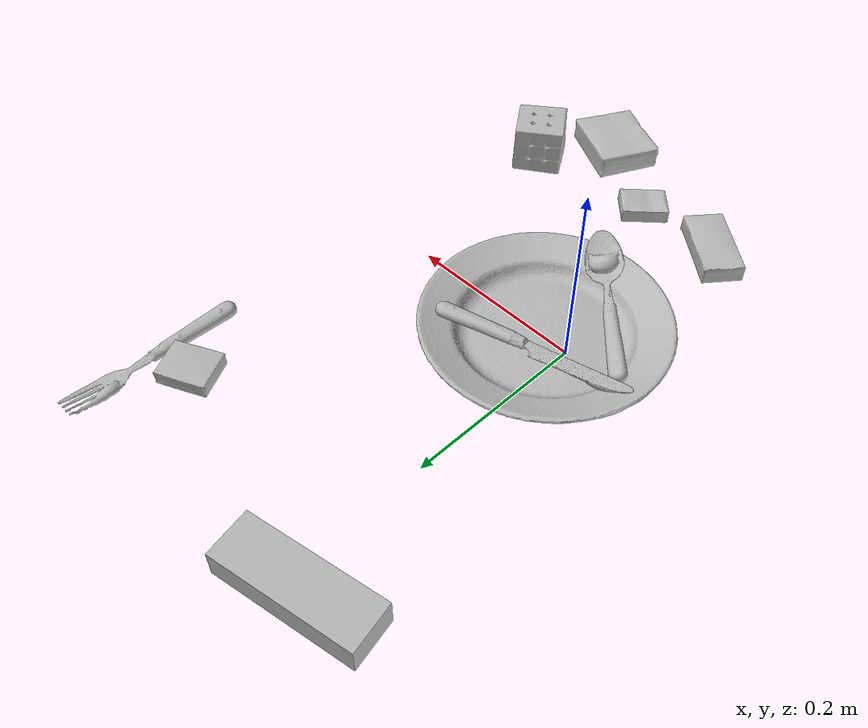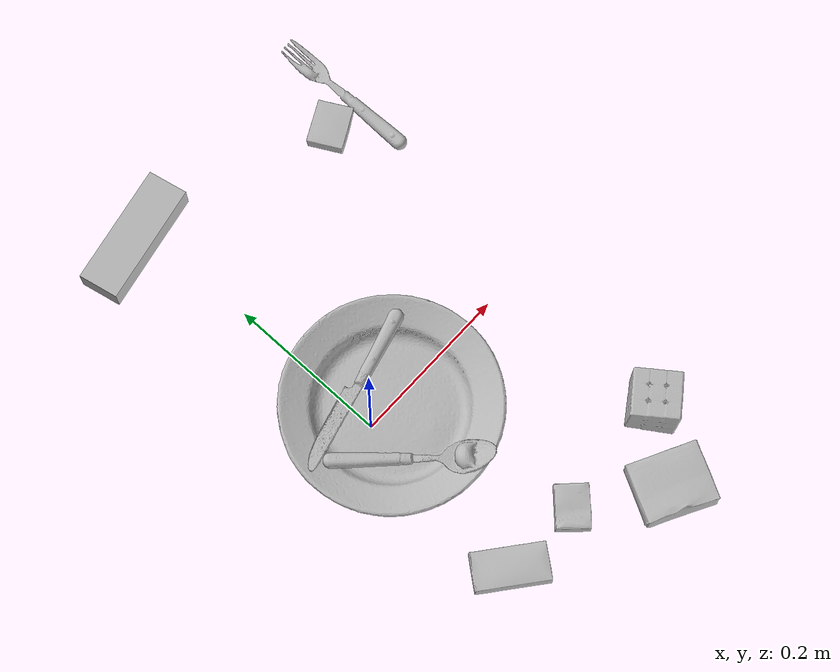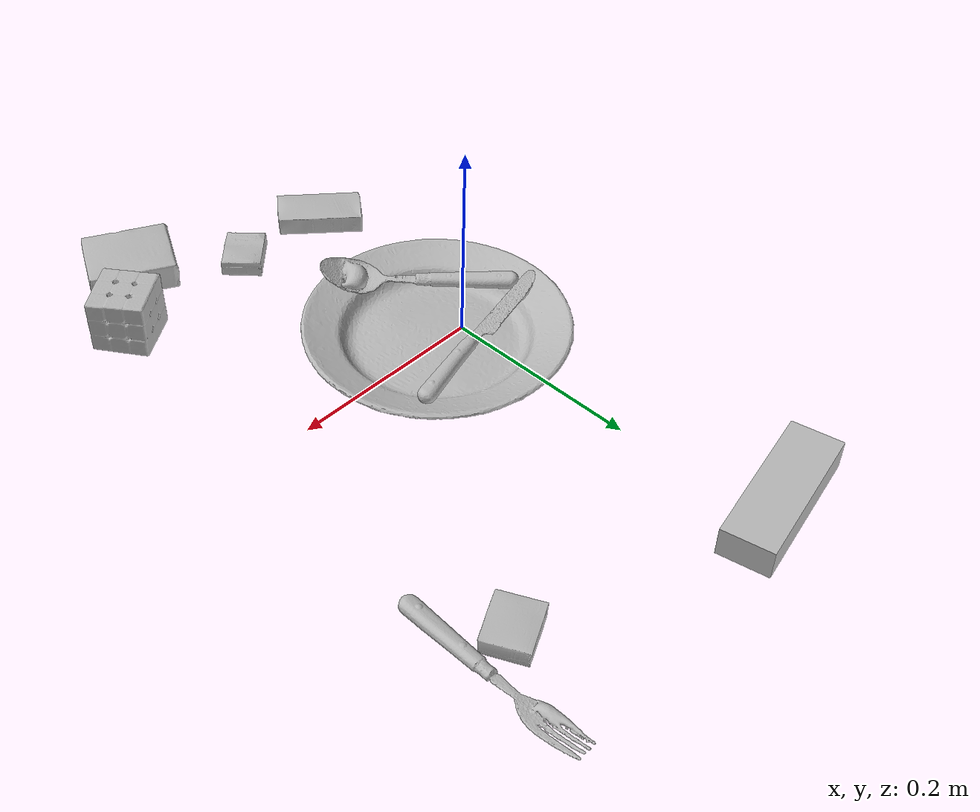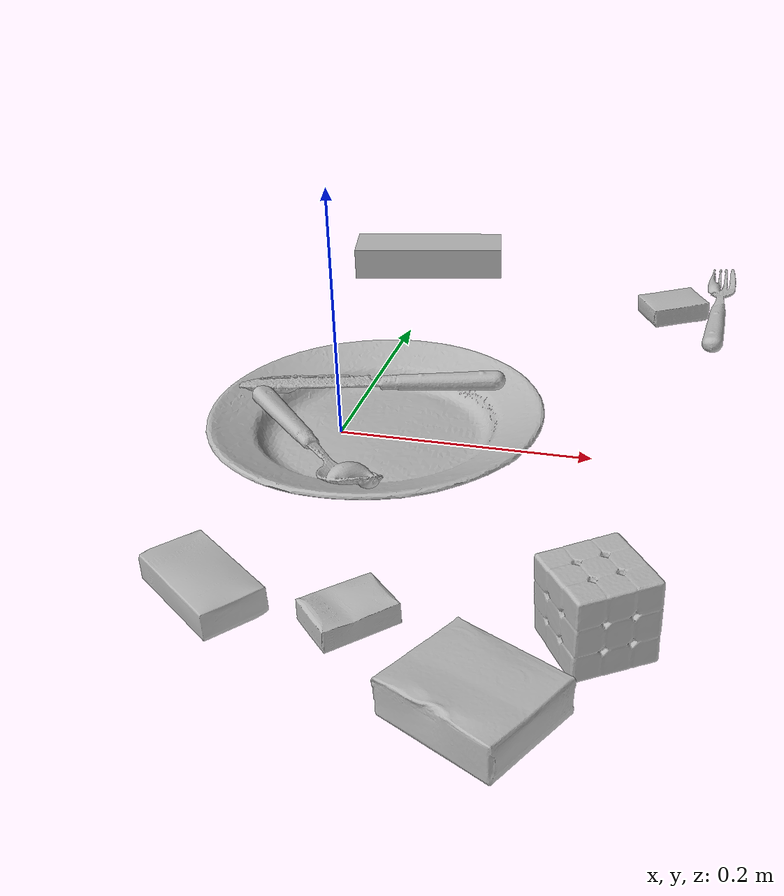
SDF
<sdf version="1.4">
  <world name="default">
    <light name="light1" type="point">
      <pose>0 0 1 0 0 0</pose>
      <diffuse>3 3 3 1</diffuse>
      <specular>3 3 3 1</specular>
    </light>
    <light name="light2" type="point">
      <pose>0 0.5 2 0 0 0</pose>
      <diffuse>1 1 1 1</diffuse>
      <specular>1 1 1 1</specular>
    </light>
    <light name="light3" type="point">
      <pose>0 0.5 2 0 0 0</pose>
      <diffuse>3 3 3 1</diffuse>
      <specular>3 3 3 1</specular>
    </light>
    <scene>
      <ambient>0.7 0.7 0.7</ambient>
    </scene>
    <model name="box11">
      <link name="link_box11">
        <collision name="default">
          <geometry>
            <mesh>
              <uri>model://pudding_box/collision_meshes/collision.obj</uri>
              <scale>0.5 0.5 0.5</scale>
            </mesh>
          </geometry>
          <surface>
            <friction>
              <ode>
                <mu>0.5</mu>
                <mu2>0.5</mu2>
              </ode>
            </friction>
          <contact>
        <ode>
            <max_vel>0</max_vel>
            <min_depth>0.0001</min_depth>
            <kp>1e8</kp>
        </ode>
    </contact></surface>
        </collision>
        <visual name="default">
          <geometry>
            <mesh>
              <uri>model://pudding_box/visual_meshes/visual.dae</uri>
              <scale>0.5 0.5 0.5</scale>
            </mesh>
          </geometry>
        </visual>
        <inertial>
          <mass>0.03786866366863251</mass>
          <pose>0.00024474109522998333 0.00040339428232982755 -0.0002594413817860186 0.005213102272185547 -0.006603797326323335 0.020079825161634604</pose>
          <inertia>
            <ixx>1.0702144e-05</ixx>
            <iyy>7.2004777e-06</iyy>
            <izz>1.580451e-05</izz>
            <ixy>0</ixy>
            <ixz>0</ixz>
            <iyz>0</iyz>
          </inertia>
        </inertial>
      </link>
      <pose>0.23676429688930511 0.285403847694397 0.00986288022249937 0.022355294671727165 -0.011389130168510661 -1.0885462207316083</pose>
    </model>
    <model name="box12">
      <link name="link_box12">
        <collision name="default">
          <geometry>
            <mesh>
              <uri>model://gelatin_box/collision_meshes/collision.obj</uri>
              <scale>1.0 1.0 1.0</scale>
            </mesh>
          </geometry>
          <surface>
            <friction>
              <ode>
                <mu>0.5</mu>
                <mu2>0.5</mu2>
              </ode>
            </friction>
          <contact>
        <ode>
            <max_vel>0</max_vel>
            <min_depth>0.0001</min_depth>
            <kp>1e8</kp>
        </ode>
    </contact></surface>
        </collision>
        <visual name="default">
          <geometry>
            <mesh>
              <uri>model://gelatin_box/visual_meshes/visual.dae</uri>
              <scale>1.0 1.0 1.0</scale>
            </mesh>
          </geometry>
        </visual>
        <inertial>
          <mass>0.12588495016098022</mass>
          <pose>0.0004319618456065655 0.00011156871914863586 -0.0003640321083366871 -0.0010503723379331838 -0.004755819617810625 0.016440561335826234</pose>
          <inertia>
            <ixx>8.886451e-05</ixx>
            <iyy>6.3475454e-05</iyy>
            <izz>0.00013527159</izz>
            <ixy>0</ixy>
            <ixz>0</ixz>
            <iyz>0</iyz>
          </inertia>
        </inertial>
      </link>
      <pose>0.17652112245559692 -0.2960408627986908 0.015168318524956703 0.005597365618804342 -0.0073044375009786635 -2.06486591633028</pose>
    </model>
    <model name="box13">
      <link name="link_box13">
        <collision name="default">
          <geometry>
            <mesh>
              <uri>model://rubiks_cube/collision_meshes/collision.obj</uri>
              <scale>1.0 1.0 1.0</scale>
            </mesh>
          </geometry>
          <surface>
            <friction>
              <ode>
                <mu>0.5</mu>
                <mu2>0.5</mu2>
              </ode>
            </friction>
          <contact>
        <ode>
            <max_vel>0</max_vel>
            <min_depth>0.0001</min_depth>
            <kp>1e8</kp>
        </ode>
    </contact></surface>
        </collision>
        <visual name="default">
          <geometry>
            <mesh>
              <uri>model://rubiks_cube/visual_meshes/visual.dae</uri>
              <scale>1.0 1.0 1.0</scale>
            </mesh>
          </geometry>
        </visual>
        <inertial>
          <mass>0.24923686683177948</mass>
          <pose>2.6721039830590598e-05 5.256966323941015e-05 -7.264316082000732e-06 -0.05467307197132049 -0.09814178001312306 -0.03445579173896148</pose>
          <inertia>
            <ixx>0.00013772011</ixx>
            <iyy>0.00013707785</iyy>
            <izz>0.00013886133</izz>
            <ixy>0</ixy>
            <ixz>0</ixz>
            <iyz>0</iyz>
          </inertia>
        </inertial>
      </link>
      <pose>0.23429033160209656 -0.2201094627380371 0.02867894247174263 -4.645930817720695e-06 -1.976604997101366e-06 2.1953077770867426</pose>
    </model>
    <model name="box21">
      <link name="link_box21">
        <collision name="default">
          <geometry>
            <mesh>
              <uri>model://cracker_box/collision_meshes/collision.obj</uri>
              <scale>0.25 0.25 0.25</scale>
            </mesh>
          </geometry>
          <surface>
            <friction>
              <ode>
                <mu>0.5</mu>
                <mu2>0.5</mu2>
              </ode>
            </friction>
          <contact>
        <ode>
            <max_vel>0</max_vel>
            <min_depth>0.0001</min_depth>
            <kp>1e8</kp>
        </ode>
    </contact></surface>
        </collision>
        <visual name="default">
          <geometry>
            <mesh>
              <uri>model://cracker_box/visual_meshes/visual.dae</uri>
              <scale>0.25 0.25 0.25</scale>
            </mesh>
          </geometry>
        </visual>
        <inertial>
          <mass>0.030397580936551094</mass>
          <pose>0.00023660376609768718 6.358562677633017e-05 -0.0004257384280208498 -0.0003162076301819785 -0.011106490531717715 0.002546795235004545</pose>
          <inertia>
            <ixx>4.8323677e-06</ixx>
            <iyy>7.979188e-06</iyy>
            <izz>1.1387034e-05</izz>
            <ixy>0</ixy>
            <ixz>0</ixz>
            <iyz>0</iyz>
          </inertia>
        </inertial>
      </link>
      <pose>0.08250757306814194 -0.23093357682228088 0.009120451286435127 -0.011788011250466954 -0.007367203232197314 0.7679475411000208</pose>
    </model>
    <model name="box22">
      <link name="link_box22">
        <collision name="default">
          <geometry>
            <mesh>
              <uri>model://jenga/collision_meshes/collision.obj</uri>
              <scale>1.0 1.0 1.0</scale>
            </mesh>
          </geometry>
          <surface>
            <friction>
              <ode>
                <mu>0.5</mu>
                <mu2>0.5</mu2>
              </ode>
            </friction>
          <contact>
        <ode>
            <max_vel>0</max_vel>
            <min_depth>0.0001</min_depth>
            <kp>1e8</kp>
        </ode>
    </contact></surface>
        </collision>
        <visual name="default">
          <geometry>
            <mesh>
              <uri>model://jenga/visual_meshes/visual.dae</uri>
              <scale>1.0 1.0 1.0</scale>
            </mesh>
          </geometry>
        </visual>
        <inertial>
          <mass>0.22754427790641785</mass>
          <pose>-2.502855807051674e-07 -0.00010250010382151231 -4.0923401684267446e-05 0.0 -7.34215461761844e-07 0.0</pose>
          <inertia>
            <ixx>6.2967025e-05</ixx>
            <iyy>0.00042666285</iyy>
            <izz>0.00045549884</izz>
            <ixy>0</ixy>
            <ixz>0</ixz>
            <iyz>0</iyz>
          </inertia>
        </inertial>
      </link>
      <pose>-0.02264496125280857 0.355744332075119 0.014999999664723873 1.1583775412248996e-08 3.8185173574760155e-09 -2.93172675568665</pose>
    </model>
    <model name="box23">
      <link name="link_box23">
        <collision name="default">
          <geometry>
            <mesh>
              <uri>model://sugar_box/collision_meshes/collision.obj</uri>
              <scale>0.5 0.5 0.5</scale>
            </mesh>
          </geometry>
          <surface>
            <friction>
              <ode>
                <mu>0.5</mu>
                <mu2>0.5</mu2>
              </ode>
            </friction>
          <contact>
        <ode>
            <max_vel>0</max_vel>
            <min_depth>0.0001</min_depth>
            <kp>1e8</kp>
        </ode>
    </contact></surface>
        </collision>
        <visual name="default">
          <geometry>
            <mesh>
              <uri>model://sugar_box/visual_meshes/visual.dae</uri>
              <scale>0.5 0.5 0.5</scale>
            </mesh>
          </geometry>
        </visual>
        <inertial>
          <mass>0.07313712686300278</mass>
          <pose>0.0005171863595023751 1.924554817378521e-05 -0.00018182402709499002 -0.0004046264167799433 0.0010506636386831275 0.0026153785560066108</pose>
          <inertia>
            <ixx>1.5234412e-05</ixx>
            <iyy>4.924075e-05</iyy>
            <izz>5.894705e-05</izz>
            <ixy>0</ixy>
            <ixz>0</ixz>
            <iyz>0</iyz>
          </inertia>
        </inertial>
      </link>
      <pose>-0.016211649402976036 -0.22527843713760376 0.011399301700294018 0.0007755528862568636 -0.02343328497255969 -0.6815306035140769</pose>
    </model>
    <model name="plate1">
      <link name="link_plate1">
        <collision name="default">
          <geometry>
            <mesh>
              <uri>model://plate/collision_meshes/collision.obj</uri>
              <scale>1.0 1.0 1.0</scale>
            </mesh>
          </geometry>
          <surface>
            <friction>
              <ode>
                <mu>0.5</mu>
                <mu2>0.5</mu2>
              </ode>
            </friction>
          <contact>
        <ode>
            <max_vel>0</max_vel>
            <min_depth>0.0001</min_depth>
            <kp>1e8</kp>
        </ode>
    </contact></surface>
        </collision>
        <visual name="default">
          <geometry>
            <mesh>
              <uri>model://plate/visual_meshes/visual.dae</uri>
              <scale>1.0 1.0 1.0</scale>
            </mesh>
          </geometry>
        </visual>
        <inertial>
          <mass>0.2069685012102127</mass>
          <pose>-0.0006044612964615226 0.0002782598603516817 -0.0010561986127868295 0.0022188143427174073 -0.003225461822968263 0.4526007532235607</pose>
          <inertia>
            <ixx>0.0009682027</ixx>
            <iyy>0.0009589421</iyy>
            <izz>0.0018936595</izz>
            <ixy>0</ixy>
            <ixz>0</ixz>
            <iyz>0</iyz>
          </inertia>
        </inertial>
      </link>
      <pose>0.03126028552651405 -0.0026503424160182476 0.013733003288507462 -3.45641683998797e-08 1.5225093471523736e-08 -1.052809432596441</pose>
    </model>
    <model name="silverware1">
      <link name="link_silverware1">
        <collision name="default">
          <geometry>
            <mesh>
              <uri>model://knife/collision_meshes/collision.obj</uri>
              <scale>1.0 1.0 1.0</scale>
            </mesh>
          </geometry>
          <surface>
            <friction>
              <ode>
                <mu>0.5</mu>
                <mu2>0.5</mu2>
              </ode>
            </friction>
          <contact>
        <ode>
            <max_vel>0</max_vel>
            <min_depth>0.0001</min_depth>
            <kp>1e8</kp>
        </ode>
    </contact></surface>
        </collision>
        <visual name="default">
          <geometry>
            <mesh>
              <uri>model://knife/visual_meshes/visual.dae</uri>
              <scale>1.0 1.0 1.0</scale>
            </mesh>
          </geometry>
        </visual>
        <inertial>
          <mass>0.01404397189617157</mass>
          <pose>-0.02378525771200657 0.0015275126788765192 5.0620223191799596e-05 0.07306830572090188 0.017248424252748085 -0.00740981553779352</pose>
          <inertia>
            <ixx>3.9862488e-07</ixx>
            <iyy>5.3954667e-05</iyy>
            <izz>5.408303e-05</izz>
            <ixy>0</ixy>
            <ixz>0</ixz>
            <iyz>0</iyz>
          </inertia>
        </inertial>
      </link>
      <pose>0.01456579938530922 0.040094152092933655 0.026546694338321686 -0.07064790448679784 -0.0016438706727295851 -2.8966953518143725</pose>
    </model>
    <model name="silverware2">
      <link name="link_silverware2">
        <collision name="default">
          <geometry>
            <mesh>
              <uri>model://fork/collision_meshes/collision.obj</uri>
              <scale>1.0 1.0 1.0</scale>
            </mesh>
          </geometry>
          <surface>
            <friction>
              <ode>
                <mu>0.5</mu>
                <mu2>0.5</mu2>
              </ode>
            </friction>
          <contact>
        <ode>
            <max_vel>0</max_vel>
            <min_depth>0.0001</min_depth>
            <kp>1e8</kp>
        </ode>
    </contact></surface>
        </collision>
        <visual name="default">
          <geometry>
            <mesh>
              <uri>model://fork/visual_meshes/visual.dae</uri>
              <scale>1.0 1.0 1.0</scale>
            </mesh>
          </geometry>
        </visual>
        <inertial>
          <mass>0.012992284260690212</mass>
          <pose>-0.029570037499070168 0.0004658822435885668 0.00032188609475269914 -0.013552170713958372 -0.010977837352032947 0.014453895109592321</pose>
          <inertia>
            <ixx>4.5545306e-07</ixx>
            <iyy>3.3919117e-05</iyy>
            <izz>3.4122822e-05</izz>
            <ixy>0</ixy>
            <ixz>0</ixz>
            <iyz>0</iyz>
          </inertia>
        </inertial>
      </link>
      <pose>0.2795760929584503 0.3012359142303467 0.0054853688925504684 -0.029437415355392866 0.04079271785735951 1.5580226350045587</pose>
    </model>
    <model name="silverware3">
      <link name="link_silverware3">
        <collision name="default">
          <geometry>
            <mesh>
              <uri>model://spoon/collision_meshes/collision.obj</uri>
              <scale>1.0 1.0 1.0</scale>
            </mesh>
          </geometry>
          <surface>
            <friction>
              <ode>
                <mu>0.5</mu>
                <mu2>0.5</mu2>
              </ode>
            </friction>
          <contact>
        <ode>
            <max_vel>0</max_vel>
            <min_depth>0.0001</min_depth>
            <kp>1e8</kp>
        </ode>
    </contact></surface>
        </collision>
        <visual name="default">
          <geometry>
            <mesh>
              <uri>model://spoon/visual_meshes/visual.dae</uri>
              <scale>1.0 1.0 1.0</scale>
            </mesh>
          </geometry>
        </visual>
        <inertial>
          <mass>0.01562128309160471</mass>
          <pose>-0.0055263228714466095 -0.0016034174477681518 -0.0007271653157658875 0.03521671072610287 -0.03906584128735088 0.006150609582760137</pose>
          <inertia>
            <ixx>8.688809e-07</ixx>
            <iyy>5.9438455e-05</iyy>
            <izz>5.986695e-05</izz>
            <ixy>0</ixy>
            <ixz>0</ixz>
            <iyz>0</iyz>
          </inertia>
        </inertial>
      </link>
      <pose>-0.0001029367558658123 -0.060587480664253235 0.026451479643583298 -0.2318718261560876 -0.0016148485861433995 -0.8067041870143873</pose>
    </model>
  <physics type="ode">
      <max_contacts>50</max_contacts>
      <ode>
        <solver>
          <type>quick</type>
          <iters>75</iters>
        </solver>
        <constraints>
          <contact_max_correcting_vel>0</contact_max_correcting_vel>
          <contact_surface_layer>0</contact_surface_layer>
        </constraints>
      </ode>
    </physics></world>
</sdf>
